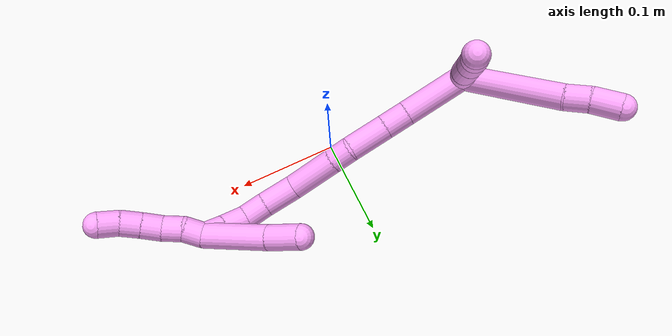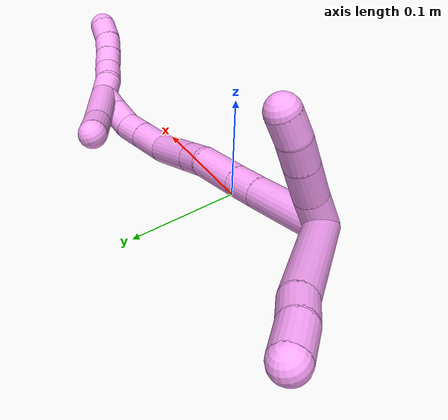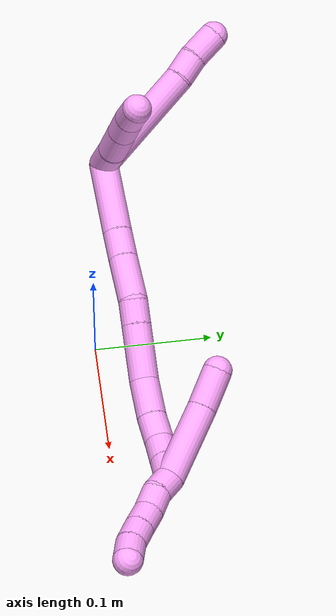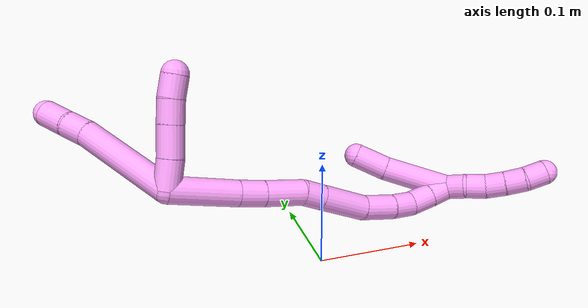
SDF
<sdf version="1.7">
 <world name="default">
  <model name="4">
   <static>0</static>
   <link name="4">
    <collision name="collision-cylinder-e_1_2_8">
     <pose>-0.034343 0.031121 0.018334 -1.03842 -0.760177 0.448963</pose>
     <geometry><cylinder><radius>0.0125</radius><length>0.099682</length></cylinder></geometry>
     <surface>
      <friction><ode><mu>1.16</mu><mu2>1.16</mu2><slip1>0</slip1><slip2>0</slip2></ode></friction>
      <contact><ode><kp>1e+06</kp><kd>1</kd><max_vel>0</max_vel><min_depth>0.001</min_depth></ode></contact>
     </surface>
    </collision>
    <visual name="visual-cylinder-e_1_2_8">
     <pose>-0.034343 0.031121 0.018334 -1.03842 -0.760177 0.448963</pose>
     <geometry><cylinder><radius>0.0125</radius><length>0.099682</length></cylinder></geometry>
     <material><ambient>1 0.65098 0.996078 1</ambient></material>
    </visual>
    <collision name="collision-cylinder-e_2_8_9">
     <pose>-0.077709 0.068438 0.039784 -1.10468 -0.915539 0.589606</pose>
     <geometry><cylinder><radius>0.0125</radius><length>0.022761</length></cylinder></geometry>
     <surface>
      <friction><ode><mu>1.16</mu><mu2>1.16</mu2><slip1>0</slip1><slip2>0</slip2></ode></friction>
      <contact><ode><kp>1e+06</kp><kd>1</kd><max_vel>0</max_vel><min_depth>0.001</min_depth></ode></contact>
     </surface>
    </collision>
    <visual name="visual-cylinder-e_2_8_9">
     <pose>-0.077709 0.068438 0.039784 -1.10468 -0.915539 0.589606</pose>
     <geometry><cylinder><radius>0.0125</radius><length>0.022761</length></cylinder></geometry>
     <material><ambient>1 0.65098 0.996078 1</ambient></material>
    </visual>
    <collision name="collision-cylinder-e_3_9_6">
     <pose>-0.096449 0.083834 0.046186 -1.22786 -0.782669 0.566002</pose>
     <geometry><cylinder><radius>0.0125</radius><length>0.027557</length></cylinder></geometry>
     <surface>
      <friction><ode><mu>1.16</mu><mu2>1.16</mu2><slip1>0</slip1><slip2>0</slip2></ode></friction>
      <contact><ode><kp>1e+06</kp><kd>1</kd><max_vel>0</max_vel><min_depth>0.001</min_depth></ode></contact>
     </surface>
    </collision>
    <visual name="visual-cylinder-e_3_9_6">
     <pose>-0.096449 0.083834 0.046186 -1.22786 -0.782669 0.566002</pose>
     <geometry><cylinder><radius>0.0125</radius><length>0.027557</length></cylinder></geometry>
     <material><ambient>1 0.65098 0.996078 1</ambient></material>
    </visual>
    <collision name="collision-cylinder-e_1_2_10">
     <pose>0.000257 3.4e-05 0.014039 -0.002412 0.018307 -2.2e-05</pose>
     <geometry><cylinder><radius>0.0125</radius><length>0.028082</length></cylinder></geometry>
     <surface>
      <friction><ode><mu>1.16</mu><mu2>1.16</mu2><slip1>0</slip1><slip2>0</slip2></ode></friction>
      <contact><ode><kp>1e+06</kp><kd>1</kd><max_vel>0</max_vel><min_depth>0.001</min_depth></ode></contact>
     </surface>
    </collision>
    <visual name="visual-cylinder-e_1_2_10">
     <pose>0.000257 3.4e-05 0.014039 -0.002412 0.018307 -2.2e-05</pose>
     <geometry><cylinder><radius>0.0125</radius><length>0.028082</length></cylinder></geometry>
     <material><ambient>1 0.65098 0.996078 1</ambient></material>
    </visual>
    <collision name="collision-cylinder-e_2_10_11">
     <pose>-0.000883 0.000282 0.042665 -0.014667 -0.095443 0.0007</pose>
     <geometry><cylinder><radius>0.0125</radius><length>0.029311</length></cylinder></geometry>
     <surface>
      <friction><ode><mu>1.16</mu><mu2>1.16</mu2><slip1>0</slip1><slip2>0</slip2></ode></friction>
      <contact><ode><kp>1e+06</kp><kd>1</kd><max_vel>0</max_vel><min_depth>0.001</min_depth></ode></contact>
     </surface>
    </collision>
    <visual name="visual-cylinder-e_2_10_11">
     <pose>-0.000883 0.000282 0.042665 -0.014667 -0.095443 0.0007</pose>
     <geometry><cylinder><radius>0.0125</radius><length>0.029311</length></cylinder></geometry>
     <material><ambient>1 0.65098 0.996078 1</ambient></material>
    </visual>
    <collision name="collision-cylinder-e_3_11_12">
     <pose>-0.003107 0.00055 0.068196 -0.004948 -0.075532 0.000187</pose>
     <geometry><cylinder><radius>0.0125</radius><length>0.021951</length></cylinder></geometry>
     <surface>
      <friction><ode><mu>1.16</mu><mu2>1.16</mu2><slip1>0</slip1><slip2>0</slip2></ode></friction>
      <contact><ode><kp>1e+06</kp><kd>1</kd><max_vel>0</max_vel><min_depth>0.001</min_depth></ode></contact>
     </surface>
    </collision>
    <visual name="visual-cylinder-e_3_11_12">
     <pose>-0.003107 0.00055 0.068196 -0.004948 -0.075532 0.000187</pose>
     <geometry><cylinder><radius>0.0125</radius><length>0.021951</length></cylinder></geometry>
     <material><ambient>1 0.65098 0.996078 1</ambient></material>
    </visual>
    <collision name="collision-cylinder-e_4_12_5">
     <pose>-0.003267 0.000798 0.089444 -0.018791 0.064816 -0.000609</pose>
     <geometry><cylinder><radius>0.0125</radius><length>0.020656</length></cylinder></geometry>
     <surface>
      <friction><ode><mu>1.16</mu><mu2>1.16</mu2><slip1>0</slip1><slip2>0</slip2></ode></friction>
      <contact><ode><kp>1e+06</kp><kd>1</kd><max_vel>0</max_vel><min_depth>0.001</min_depth></ode></contact>
     </surface>
    </collision>
    <visual name="visual-cylinder-e_4_12_5">
     <pose>-0.003267 0.000798 0.089444 -0.018791 0.064816 -0.000609</pose>
     <geometry><cylinder><radius>0.0125</radius><length>0.020656</length></cylinder></geometry>
     <material><ambient>1 0.65098 0.996078 1</ambient></material>
    </visual>
    <collision name="collision-cylinder-e_1_2_13">
     <pose>0.0323 0.003898 -6.5e-05 -1.5875 1.45068 -1.46728</pose>
     <geometry><cylinder><radius>0.0125</radius><length>0.065069</length></cylinder></geometry>
     <surface>
      <friction><ode><mu>1.16</mu><mu2>1.16</mu2><slip1>0</slip1><slip2>0</slip2></ode></friction>
      <contact><ode><kp>1e+06</kp><kd>1</kd><max_vel>0</max_vel><min_depth>0.001</min_depth></ode></contact>
     </surface>
    </collision>
    <visual name="visual-cylinder-e_1_2_13">
     <pose>0.0323 0.003898 -6.5e-05 -1.5875 1.45068 -1.46728</pose>
     <geometry><cylinder><radius>0.0125</radius><length>0.065069</length></cylinder></geometry>
     <material><ambient>1 0.65098 0.996078 1</ambient></material>
    </visual>
    <collision name="collision-cylinder-e_2_13_14">
     <pose>0.077022 0.009305 0.000277 -1.3075 1.44563 -1.18857</pose>
     <geometry><cylinder><radius>0.0125</radius><length>0.025039</length></cylinder></geometry>
     <surface>
      <friction><ode><mu>1.16</mu><mu2>1.16</mu2><slip1>0</slip1><slip2>0</slip2></ode></friction>
      <contact><ode><kp>1e+06</kp><kd>1</kd><max_vel>0</max_vel><min_depth>0.001</min_depth></ode></contact>
     </surface>
    </collision>
    <visual name="visual-cylinder-e_2_13_14">
     <pose>0.077022 0.009305 0.000277 -1.3075 1.44563 -1.18857</pose>
     <geometry><cylinder><radius>0.0125</radius><length>0.025039</length></cylinder></geometry>
     <material><ambient>1 0.65098 0.996078 1</ambient></material>
    </visual>
    <collision name="collision-cylinder-e_3_14_15">
     <pose>0.109208 0.013242 0.002181 -1.01822 1.42744 -0.900567</pose>
     <geometry><cylinder><radius>0.0125</radius><length>0.039939</length></cylinder></geometry>
     <surface>
      <friction><ode><mu>1.16</mu><mu2>1.16</mu2><slip1>0</slip1><slip2>0</slip2></ode></friction>
      <contact><ode><kp>1e+06</kp><kd>1</kd><max_vel>0</max_vel><min_depth>0.001</min_depth></ode></contact>
     </surface>
    </collision>
    <visual name="visual-cylinder-e_3_14_15">
     <pose>0.109208 0.013242 0.002181 -1.01822 1.42744 -0.900567</pose>
     <geometry><cylinder><radius>0.0125</radius><length>0.039939</length></cylinder></geometry>
     <material><ambient>1 0.65098 0.996078 1</ambient></material>
    </visual>
    <collision name="collision-cylinder-e_4_15_16">
     <pose>0.139167 0.016898 0.001775 -2.56872 1.35219 -2.43785</pose>
     <geometry><cylinder><radius>0.0125</radius><length>0.020887</length></cylinder></geometry>
     <surface>
      <friction><ode><mu>1.16</mu><mu2>1.16</mu2><slip1>0</slip1><slip2>0</slip2></ode></friction>
      <contact><ode><kp>1e+06</kp><kd>1</kd><max_vel>0</max_vel><min_depth>0.001</min_depth></ode></contact>
     </surface>
    </collision>
    <visual name="visual-cylinder-e_4_15_16">
     <pose>0.139167 0.016898 0.001775 -2.56872 1.35219 -2.43785</pose>
     <geometry><cylinder><radius>0.0125</radius><length>0.020887</length></cylinder></geometry>
     <material><ambient>1 0.65098 0.996078 1</ambient></material>
    </visual>
    <collision name="collision-cylinder-e_5_16_17">
     <pose>0.172902 0.021031 -0.004473 -2.55222 1.35232 -2.41827</pose>
     <geometry><cylinder><radius>0.0125</radius><length>0.048227</length></cylinder></geometry>
     <surface>
      <friction><ode><mu>1.16</mu><mu2>1.16</mu2><slip1>0</slip1><slip2>0</slip2></ode></friction>
      <contact><ode><kp>1e+06</kp><kd>1</kd><max_vel>0</max_vel><min_depth>0.001</min_depth></ode></contact>
     </surface>
    </collision>
    <visual name="visual-cylinder-e_5_16_17">
     <pose>0.172902 0.021031 -0.004473 -2.55222 1.35232 -2.41827</pose>
     <geometry><cylinder><radius>0.0125</radius><length>0.048227</length></cylinder></geometry>
     <material><ambient>1 0.65098 0.996078 1</ambient></material>
    </visual>
    <collision name="collision-cylinder-e_6_17_18">
     <pose>0.212966 0.025688 -0.007788 -1.03932 1.44843 -0.936972</pose>
     <geometry><cylinder><radius>0.0125</radius><length>0.033297</length></cylinder></geometry>
     <surface>
      <friction><ode><mu>1.16</mu><mu2>1.16</mu2><slip1>0</slip1><slip2>0</slip2></ode></friction>
      <contact><ode><kp>1e+06</kp><kd>1</kd><max_vel>0</max_vel><min_depth>0.001</min_depth></ode></contact>
     </surface>
    </collision>
    <visual name="visual-cylinder-e_6_17_18">
     <pose>0.212966 0.025688 -0.007788 -1.03932 1.44843 -0.936972</pose>
     <geometry><cylinder><radius>0.0125</radius><length>0.033297</length></cylinder></geometry>
     <material><ambient>1 0.65098 0.996078 1</ambient></material>
    </visual>
    <collision name="collision-cylinder-e_7_18_19">
     <pose>0.240962 0.029286 -0.004778 -0.750519 1.33909 -0.604493</pose>
     <geometry><cylinder><radius>0.0125</radius><length>0.023574</length></cylinder></geometry>
     <surface>
      <friction><ode><mu>1.16</mu><mu2>1.16</mu2><slip1>0</slip1><slip2>0</slip2></ode></friction>
      <contact><ode><kp>1e+06</kp><kd>1</kd><max_vel>0</max_vel><min_depth>0.001</min_depth></ode></contact>
     </surface>
    </collision>
    <visual name="visual-cylinder-e_7_18_19">
     <pose>0.240962 0.029286 -0.004778 -0.750519 1.33909 -0.604493</pose>
     <geometry><cylinder><radius>0.0125</radius><length>0.023574</length></cylinder></geometry>
     <material><ambient>1 0.65098 0.996078 1</ambient></material>
    </visual>
    <collision name="collision-cylinder-e_8_19_20">
     <pose>0.262975 0.031195 0.002242 -0.012497 1.12469 -0.007876</pose>
     <geometry><cylinder><radius>0.0125</radius><length>0.023368</length></cylinder></geometry>
     <surface>
      <friction><ode><mu>1.16</mu><mu2>1.16</mu2><slip1>0</slip1><slip2>0</slip2></ode></friction>
      <contact><ode><kp>1e+06</kp><kd>1</kd><max_vel>0</max_vel><min_depth>0.001</min_depth></ode></contact>
     </surface>
    </collision>
    <visual name="visual-cylinder-e_8_19_20">
     <pose>0.262975 0.031195 0.002242 -0.012497 1.12469 -0.007876</pose>
     <geometry><cylinder><radius>0.0125</radius><length>0.023368</length></cylinder></geometry>
     <material><ambient>1 0.65098 0.996078 1</ambient></material>
    </visual>
    <collision name="collision-cylinder-e_9_20_1">
     <pose>0.282466 0.030902 0.012369 0.069935 1.05299 0.040659</pose>
     <geometry><cylinder><radius>0.0125</radius><length>0.020601</length></cylinder></geometry>
     <surface>
      <friction><ode><mu>1.16</mu><mu2>1.16</mu2><slip1>0</slip1><slip2>0</slip2></ode></friction>
      <contact><ode><kp>1e+06</kp><kd>1</kd><max_vel>0</max_vel><min_depth>0.001</min_depth></ode></contact>
     </surface>
    </collision>
    <visual name="visual-cylinder-e_9_20_1">
     <pose>0.282466 0.030902 0.012369 0.069935 1.05299 0.040659</pose>
     <geometry><cylinder><radius>0.0125</radius><length>0.020601</length></cylinder></geometry>
     <material><ambient>1 0.65098 0.996078 1</ambient></material>
    </visual>
    <collision name="collision-cylinder-e_1_1_21">
     <pose>0.298493 0.023794 0.019534 1.27203 0.786299 0.59433</pose>
     <geometry><cylinder><radius>0.0125</radius><length>0.02</length></cylinder></geometry>
     <surface>
      <friction><ode><mu>1.16</mu><mu2>1.16</mu2><slip1>0</slip1><slip2>0</slip2></ode></friction>
      <contact><ode><kp>1e+06</kp><kd>1</kd><max_vel>0</max_vel><min_depth>0.001</min_depth></ode></contact>
     </surface>
    </collision>
    <visual name="visual-cylinder-e_1_1_21">
     <pose>0.298493 0.023794 0.019534 1.27203 0.786299 0.59433</pose>
     <geometry><cylinder><radius>0.0125</radius><length>0.02</length></cylinder></geometry>
     <material><ambient>1 0.65098 0.996078 1</ambient></material>
    </visual>
    <collision name="collision-cylinder-e_2_21_22">
     <pose>0.31436 0.012457 0.022928 1.29152 1.07362 0.843091</pose>
     <geometry><cylinder><radius>0.0125</radius><length>0.02</length></cylinder></geometry>
     <surface>
      <friction><ode><mu>1.16</mu><mu2>1.16</mu2><slip1>0</slip1><slip2>0</slip2></ode></friction>
      <contact><ode><kp>1e+06</kp><kd>1</kd><max_vel>0</max_vel><min_depth>0.001</min_depth></ode></contact>
     </surface>
    </collision>
    <visual name="visual-cylinder-e_2_21_22">
     <pose>0.31436 0.012457 0.022928 1.29152 1.07362 0.843091</pose>
     <geometry><cylinder><radius>0.0125</radius><length>0.02</length></cylinder></geometry>
     <material><ambient>1 0.65098 0.996078 1</ambient></material>
    </visual>
    <collision name="collision-cylinder-e_3_22_23">
     <pose>0.330984 0.002431 0.027245 1.06673 0.900194 0.555811</pose>
     <geometry><cylinder><radius>0.0125</radius><length>0.02</length></cylinder></geometry>
     <surface>
      <friction><ode><mu>1.16</mu><mu2>1.16</mu2><slip1>0</slip1><slip2>0</slip2></ode></friction>
      <contact><ode><kp>1e+06</kp><kd>1</kd><max_vel>0</max_vel><min_depth>0.001</min_depth></ode></contact>
     </surface>
    </collision>
    <visual name="visual-cylinder-e_3_22_23">
     <pose>0.330984 0.002431 0.027245 1.06673 0.900194 0.555811</pose>
     <geometry><cylinder><radius>0.0125</radius><length>0.02</length></cylinder></geometry>
     <material><ambient>1 0.65098 0.996078 1</ambient></material>
    </visual>
    <collision name="collision-cylinder-e_4_23_24">
     <pose>0.346653 -0.00805 0.033883 0.945689 0.900228 0.484643</pose>
     <geometry><cylinder><radius>0.0125</radius><length>0.02</length></cylinder></geometry>
     <surface>
      <friction><ode><mu>1.16</mu><mu2>1.16</mu2><slip1>0</slip1><slip2>0</slip2></ode></friction>
      <contact><ode><kp>1e+06</kp><kd>1</kd><max_vel>0</max_vel><min_depth>0.001</min_depth></ode></contact>
     </surface>
    </collision>
    <visual name="visual-cylinder-e_4_23_24">
     <pose>0.346653 -0.00805 0.033883 0.945689 0.900228 0.484643</pose>
     <geometry><cylinder><radius>0.0125</radius><length>0.02</length></cylinder></geometry>
     <material><ambient>1 0.65098 0.996078 1</ambient></material>
    </visual>
    <collision name="collision-cylinder-e_5_24_4">
     <pose>0.362806 -0.016199 0.042116 0.594852 0.982474 0.325068</pose>
     <geometry><cylinder><radius>0.0125</radius><length>0.02</length></cylinder></geometry>
     <surface>
      <friction><ode><mu>1.16</mu><mu2>1.16</mu2><slip1>0</slip1><slip2>0</slip2></ode></friction>
      <contact><ode><kp>1e+06</kp><kd>1</kd><max_vel>0</max_vel><min_depth>0.001</min_depth></ode></contact>
     </surface>
    </collision>
    <visual name="visual-cylinder-e_5_24_4">
     <pose>0.362806 -0.016199 0.042116 0.594852 0.982474 0.325068</pose>
     <geometry><cylinder><radius>0.0125</radius><length>0.02</length></cylinder></geometry>
     <material><ambient>1 0.65098 0.996078 1</ambient></material>
    </visual>
    <collision name="collision-cylinder-e_1_1_25">
     <pose>0.262356 0.045254 0.022965 -1.21236 -1.07526 0.783881</pose>
     <geometry><cylinder><radius>0.0125</radius><length>0.066067</length></cylinder></geometry>
     <surface>
      <friction><ode><mu>1.16</mu><mu2>1.16</mu2><slip1>0</slip1><slip2>0</slip2></ode></friction>
      <contact><ode><kp>1e+06</kp><kd>1</kd><max_vel>0</max_vel><min_depth>0.001</min_depth></ode></contact>
     </surface>
    </collision>
    <visual name="visual-cylinder-e_1_1_25">
     <pose>0.262356 0.045254 0.022965 -1.21236 -1.07526 0.783881</pose>
     <geometry><cylinder><radius>0.0125</radius><length>0.066067</length></cylinder></geometry>
     <material><ambient>1 0.65098 0.996078 1</ambient></material>
    </visual>
    <collision name="collision-cylinder-e_2_25_3">
     <pose>0.218401 0.066379 0.033463 -0.909952 -1.07137 0.565224</pose>
     <geometry><cylinder><radius>0.0125</radius><length>0.033933</length></cylinder></geometry>
     <surface>
      <friction><ode><mu>1.16</mu><mu2>1.16</mu2><slip1>0</slip1><slip2>0</slip2></ode></friction>
      <contact><ode><kp>1e+06</kp><kd>1</kd><max_vel>0</max_vel><min_depth>0.001</min_depth></ode></contact>
     </surface>
    </collision>
    <visual name="visual-cylinder-e_2_25_3">
     <pose>0.218401 0.066379 0.033463 -0.909952 -1.07137 0.565224</pose>
     <geometry><cylinder><radius>0.0125</radius><length>0.033933</length></cylinder></geometry>
     <material><ambient>1 0.65098 0.996078 1</ambient></material>
    </visual>
    <collision name="collision-sphere-3">
     <pose>0.203507 0.072793 0.03845 0 -0 0</pose>
     <geometry><sphere><radius>0.0125</radius></sphere></geometry>
     <surface>
      <friction><ode><mu>1.16</mu><mu2>1.16</mu2><slip1>0</slip1><slip2>0</slip2></ode></friction>
      <contact><ode><kp>1e+06</kp><kd>1</kd><max_vel>0</max_vel><min_depth>0.001</min_depth></ode></contact>
     </surface>
    </collision>
    <visual name="visual-sphere-3">
     <pose>0.203507 0.072793 0.03845 0 -0 0</pose>
     <geometry><sphere><radius>0.0125</radius></sphere></geometry>
     <material><ambient>1 0.65098 0.996078 1</ambient></material>
    </visual>
    <collision name="collision-sphere-25">
     <pose>0.233295 0.059964 0.028475 0 -0 0</pose>
     <geometry><sphere><radius>0.0125</radius></sphere></geometry>
     <surface>
      <friction><ode><mu>1.16</mu><mu2>1.16</mu2><slip1>0</slip1><slip2>0</slip2></ode></friction>
      <contact><ode><kp>1e+06</kp><kd>1</kd><max_vel>0</max_vel><min_depth>0.001</min_depth></ode></contact>
     </surface>
    </collision>
    <visual name="visual-sphere-25">
     <pose>0.233295 0.059964 0.028475 0 -0 0</pose>
     <geometry><sphere><radius>0.0125</radius></sphere></geometry>
     <material><ambient>1 0.65098 0.996078 1</ambient></material>
    </visual>
    <collision name="collision-sphere-4">
     <pose>0.371125 -0.019309 0.046712 0 -0 0</pose>
     <geometry><sphere><radius>0.0125</radius></sphere></geometry>
     <surface>
      <friction><ode><mu>1.16</mu><mu2>1.16</mu2><slip1>0</slip1><slip2>0</slip2></ode></friction>
      <contact><ode><kp>1e+06</kp><kd>1</kd><max_vel>0</max_vel><min_depth>0.001</min_depth></ode></contact>
     </surface>
    </collision>
    <visual name="visual-sphere-4">
     <pose>0.371125 -0.019309 0.046712 0 -0 0</pose>
     <geometry><sphere><radius>0.0125</radius></sphere></geometry>
     <material><ambient>1 0.65098 0.996078 1</ambient></material>
    </visual>
    <collision name="collision-sphere-24">
     <pose>0.354487 -0.013089 0.037519 0 -0 0</pose>
     <geometry><sphere><radius>0.0125</radius></sphere></geometry>
     <surface>
      <friction><ode><mu>1.16</mu><mu2>1.16</mu2><slip1>0</slip1><slip2>0</slip2></ode></friction>
      <contact><ode><kp>1e+06</kp><kd>1</kd><max_vel>0</max_vel><min_depth>0.001</min_depth></ode></contact>
     </surface>
    </collision>
    <visual name="visual-sphere-24">
     <pose>0.354487 -0.013089 0.037519 0 -0 0</pose>
     <geometry><sphere><radius>0.0125</radius></sphere></geometry>
     <material><ambient>1 0.65098 0.996078 1</ambient></material>
    </visual>
    <collision name="collision-sphere-23">
     <pose>0.338818 -0.003011 0.030246 0 -0 0</pose>
     <geometry><sphere><radius>0.0125</radius></sphere></geometry>
     <surface>
      <friction><ode><mu>1.16</mu><mu2>1.16</mu2><slip1>0</slip1><slip2>0</slip2></ode></friction>
      <contact><ode><kp>1e+06</kp><kd>1</kd><max_vel>0</max_vel><min_depth>0.001</min_depth></ode></contact>
     </surface>
    </collision>
    <visual name="visual-sphere-23">
     <pose>0.338818 -0.003011 0.030246 0 -0 0</pose>
     <geometry><sphere><radius>0.0125</radius></sphere></geometry>
     <material><ambient>1 0.65098 0.996078 1</ambient></material>
    </visual>
    <collision name="collision-sphere-22">
     <pose>0.323149 0.007872 0.024243 0 -0 0</pose>
     <geometry><sphere><radius>0.0125</radius></sphere></geometry>
     <surface>
      <friction><ode><mu>1.16</mu><mu2>1.16</mu2><slip1>0</slip1><slip2>0</slip2></ode></friction>
      <contact><ode><kp>1e+06</kp><kd>1</kd><max_vel>0</max_vel><min_depth>0.001</min_depth></ode></contact>
     </surface>
    </collision>
    <visual name="visual-sphere-22">
     <pose>0.323149 0.007872 0.024243 0 -0 0</pose>
     <geometry><sphere><radius>0.0125</radius></sphere></geometry>
     <material><ambient>1 0.65098 0.996078 1</ambient></material>
    </visual>
    <collision name="collision-sphere-21">
     <pose>0.305571 0.017042 0.021614 0 -0 0</pose>
     <geometry><sphere><radius>0.0125</radius></sphere></geometry>
     <surface>
      <friction><ode><mu>1.16</mu><mu2>1.16</mu2><slip1>0</slip1><slip2>0</slip2></ode></friction>
      <contact><ode><kp>1e+06</kp><kd>1</kd><max_vel>0</max_vel><min_depth>0.001</min_depth></ode></contact>
     </surface>
    </collision>
    <visual name="visual-sphere-21">
     <pose>0.305571 0.017042 0.021614 0 -0 0</pose>
     <geometry><sphere><radius>0.0125</radius></sphere></geometry>
     <material><ambient>1 0.65098 0.996078 1</ambient></material>
    </visual>
    <collision name="collision-sphere-1">
     <pose>0.291416 0.030545 0.017455 0 -0 0</pose>
     <geometry><sphere><radius>0.0125</radius></sphere></geometry>
     <surface>
      <friction><ode><mu>1.16</mu><mu2>1.16</mu2><slip1>0</slip1><slip2>0</slip2></ode></friction>
      <contact><ode><kp>1e+06</kp><kd>1</kd><max_vel>0</max_vel><min_depth>0.001</min_depth></ode></contact>
     </surface>
    </collision>
    <visual name="visual-sphere-1">
     <pose>0.291416 0.030545 0.017455 0 -0 0</pose>
     <geometry><sphere><radius>0.0125</radius></sphere></geometry>
     <material><ambient>1 0.65098 0.996078 1</ambient></material>
    </visual>
    <collision name="collision-sphere-11">
     <pose>-0.002279 0.000496 0.057252 0 -0 0</pose>
     <geometry><sphere><radius>0.0125</radius></sphere></geometry>
     <surface>
      <friction><ode><mu>1.16</mu><mu2>1.16</mu2><slip1>0</slip1><slip2>0</slip2></ode></friction>
      <contact><ode><kp>1e+06</kp><kd>1</kd><max_vel>0</max_vel><min_depth>0.001</min_depth></ode></contact>
     </surface>
    </collision>
    <visual name="visual-sphere-11">
     <pose>-0.002279 0.000496 0.057252 0 -0 0</pose>
     <geometry><sphere><radius>0.0125</radius></sphere></geometry>
     <material><ambient>1 0.65098 0.996078 1</ambient></material>
    </visual>
    <collision name="collision-sphere-10">
     <pose>0.000514 6.8e-05 0.028077 0 -0 0</pose>
     <geometry><sphere><radius>0.0125</radius></sphere></geometry>
     <surface>
      <friction><ode><mu>1.16</mu><mu2>1.16</mu2><slip1>0</slip1><slip2>0</slip2></ode></friction>
      <contact><ode><kp>1e+06</kp><kd>1</kd><max_vel>0</max_vel><min_depth>0.001</min_depth></ode></contact>
     </surface>
    </collision>
    <visual name="visual-sphere-10">
     <pose>0.000514 6.8e-05 0.028077 0 -0 0</pose>
     <geometry><sphere><radius>0.0125</radius></sphere></geometry>
     <material><ambient>1 0.65098 0.996078 1</ambient></material>
    </visual>
    <collision name="collision-sphere-6">
     <pose>-0.106165 0.093034 0.049471 0 -0 0</pose>
     <geometry><sphere><radius>0.0125</radius></sphere></geometry>
     <surface>
      <friction><ode><mu>1.16</mu><mu2>1.16</mu2><slip1>0</slip1><slip2>0</slip2></ode></friction>
      <contact><ode><kp>1e+06</kp><kd>1</kd><max_vel>0</max_vel><min_depth>0.001</min_depth></ode></contact>
     </surface>
    </collision>
    <visual name="visual-sphere-6">
     <pose>-0.106165 0.093034 0.049471 0 -0 0</pose>
     <geometry><sphere><radius>0.0125</radius></sphere></geometry>
     <material><ambient>1 0.65098 0.996078 1</ambient></material>
    </visual>
    <collision name="collision-sphere-9">
     <pose>-0.086733 0.074633 0.042901 0 -0 0</pose>
     <geometry><sphere><radius>0.0125</radius></sphere></geometry>
     <surface>
      <friction><ode><mu>1.16</mu><mu2>1.16</mu2><slip1>0</slip1><slip2>0</slip2></ode></friction>
      <contact><ode><kp>1e+06</kp><kd>1</kd><max_vel>0</max_vel><min_depth>0.001</min_depth></ode></contact>
     </surface>
    </collision>
    <visual name="visual-sphere-9">
     <pose>-0.086733 0.074633 0.042901 0 -0 0</pose>
     <geometry><sphere><radius>0.0125</radius></sphere></geometry>
     <material><ambient>1 0.65098 0.996078 1</ambient></material>
    </visual>
    <collision name="collision-sphere-2">
     <geometry><sphere><radius>0.0125</radius></sphere></geometry>
     <surface>
      <friction><ode><mu>1.16</mu><mu2>1.16</mu2><slip1>0</slip1><slip2>0</slip2></ode></friction>
      <contact><ode><kp>1e+06</kp><kd>1</kd><max_vel>0</max_vel><min_depth>0.001</min_depth></ode></contact>
     </surface>
    </collision>
    <visual name="visual-sphere-2">
     <geometry><sphere><radius>0.0125</radius></sphere></geometry>
     <material><ambient>1 0.65098 0.996078 1</ambient></material>
    </visual>
    <collision name="collision-sphere-19">
     <pose>0.252434 0.031132 -0.002799 0 -0 0</pose>
     <geometry><sphere><radius>0.0125</radius></sphere></geometry>
     <surface>
      <friction><ode><mu>1.16</mu><mu2>1.16</mu2><slip1>0</slip1><slip2>0</slip2></ode></friction>
      <contact><ode><kp>1e+06</kp><kd>1</kd><max_vel>0</max_vel><min_depth>0.001</min_depth></ode></contact>
     </surface>
    </collision>
    <visual name="visual-sphere-19">
     <pose>0.252434 0.031132 -0.002799 0 -0 0</pose>
     <geometry><sphere><radius>0.0125</radius></sphere></geometry>
     <material><ambient>1 0.65098 0.996078 1</ambient></material>
    </visual>
    <collision name="collision-sphere-8">
     <pose>-0.068686 0.062243 0.036668 0 -0 0</pose>
     <geometry><sphere><radius>0.0125</radius></sphere></geometry>
     <surface>
      <friction><ode><mu>1.16</mu><mu2>1.16</mu2><slip1>0</slip1><slip2>0</slip2></ode></friction>
      <contact><ode><kp>1e+06</kp><kd>1</kd><max_vel>0</max_vel><min_depth>0.001</min_depth></ode></contact>
     </surface>
    </collision>
    <visual name="visual-sphere-8">
     <pose>-0.068686 0.062243 0.036668 0 -0 0</pose>
     <geometry><sphere><radius>0.0125</radius></sphere></geometry>
     <material><ambient>1 0.65098 0.996078 1</ambient></material>
    </visual>
    <collision name="collision-sphere-12">
     <pose>-0.003936 0.000604 0.07914 0 -0 0</pose>
     <geometry><sphere><radius>0.0125</radius></sphere></geometry>
     <surface>
      <friction><ode><mu>1.16</mu><mu2>1.16</mu2><slip1>0</slip1><slip2>0</slip2></ode></friction>
      <contact><ode><kp>1e+06</kp><kd>1</kd><max_vel>0</max_vel><min_depth>0.001</min_depth></ode></contact>
     </surface>
    </collision>
    <visual name="visual-sphere-12">
     <pose>-0.003936 0.000604 0.07914 0 -0 0</pose>
     <geometry><sphere><radius>0.0125</radius></sphere></geometry>
     <material><ambient>1 0.65098 0.996078 1</ambient></material>
    </visual>
    <collision name="collision-sphere-5">
     <pose>-0.002598 0.000991 0.099749 0 -0 0</pose>
     <geometry><sphere><radius>0.0125</radius></sphere></geometry>
     <surface>
      <friction><ode><mu>1.16</mu><mu2>1.16</mu2><slip1>0</slip1><slip2>0</slip2></ode></friction>
      <contact><ode><kp>1e+06</kp><kd>1</kd><max_vel>0</max_vel><min_depth>0.001</min_depth></ode></contact>
     </surface>
    </collision>
    <visual name="visual-sphere-5">
     <pose>-0.002598 0.000991 0.099749 0 -0 0</pose>
     <geometry><sphere><radius>0.0125</radius></sphere></geometry>
     <material><ambient>1 0.65098 0.996078 1</ambient></material>
    </visual>
    <collision name="collision-sphere-13">
     <pose>0.0646 0.007796 -0.00013 0 -0 0</pose>
     <geometry><sphere><radius>0.0125</radius></sphere></geometry>
     <surface>
      <friction><ode><mu>1.16</mu><mu2>1.16</mu2><slip1>0</slip1><slip2>0</slip2></ode></friction>
      <contact><ode><kp>1e+06</kp><kd>1</kd><max_vel>0</max_vel><min_depth>0.001</min_depth></ode></contact>
     </surface>
    </collision>
    <visual name="visual-sphere-13">
     <pose>0.0646 0.007796 -0.00013 0 -0 0</pose>
     <geometry><sphere><radius>0.0125</radius></sphere></geometry>
     <material><ambient>1 0.65098 0.996078 1</ambient></material>
    </visual>
    <collision name="collision-sphere-14">
     <pose>0.089443 0.010814 0.000683 0 -0 0</pose>
     <geometry><sphere><radius>0.0125</radius></sphere></geometry>
     <surface>
      <friction><ode><mu>1.16</mu><mu2>1.16</mu2><slip1>0</slip1><slip2>0</slip2></ode></friction>
      <contact><ode><kp>1e+06</kp><kd>1</kd><max_vel>0</max_vel><min_depth>0.001</min_depth></ode></contact>
     </surface>
    </collision>
    <visual name="visual-sphere-14">
     <pose>0.089443 0.010814 0.000683 0 -0 0</pose>
     <geometry><sphere><radius>0.0125</radius></sphere></geometry>
     <material><ambient>1 0.65098 0.996078 1</ambient></material>
    </visual>
    <collision name="collision-sphere-15">
     <pose>0.128972 0.015671 0.003678 0 -0 0</pose>
     <geometry><sphere><radius>0.0125</radius></sphere></geometry>
     <surface>
      <friction><ode><mu>1.16</mu><mu2>1.16</mu2><slip1>0</slip1><slip2>0</slip2></ode></friction>
      <contact><ode><kp>1e+06</kp><kd>1</kd><max_vel>0</max_vel><min_depth>0.001</min_depth></ode></contact>
     </surface>
    </collision>
    <visual name="visual-sphere-15">
     <pose>0.128972 0.015671 0.003678 0 -0 0</pose>
     <geometry><sphere><radius>0.0125</radius></sphere></geometry>
     <material><ambient>1 0.65098 0.996078 1</ambient></material>
    </visual>
    <collision name="collision-sphere-16">
     <pose>0.149362 0.018126 -0.000128 0 -0 0</pose>
     <geometry><sphere><radius>0.0125</radius></sphere></geometry>
     <surface>
      <friction><ode><mu>1.16</mu><mu2>1.16</mu2><slip1>0</slip1><slip2>0</slip2></ode></friction>
      <contact><ode><kp>1e+06</kp><kd>1</kd><max_vel>0</max_vel><min_depth>0.001</min_depth></ode></contact>
     </surface>
    </collision>
    <visual name="visual-sphere-16">
     <pose>0.149362 0.018126 -0.000128 0 -0 0</pose>
     <geometry><sphere><radius>0.0125</radius></sphere></geometry>
     <material><ambient>1 0.65098 0.996078 1</ambient></material>
    </visual>
    <collision name="collision-sphere-17">
     <pose>0.196442 0.023936 -0.008818 0 -0 0</pose>
     <geometry><sphere><radius>0.0125</radius></sphere></geometry>
     <surface>
      <friction><ode><mu>1.16</mu><mu2>1.16</mu2><slip1>0</slip1><slip2>0</slip2></ode></friction>
      <contact><ode><kp>1e+06</kp><kd>1</kd><max_vel>0</max_vel><min_depth>0.001</min_depth></ode></contact>
     </surface>
    </collision>
    <visual name="visual-sphere-17">
     <pose>0.196442 0.023936 -0.008818 0 -0 0</pose>
     <geometry><sphere><radius>0.0125</radius></sphere></geometry>
     <material><ambient>1 0.65098 0.996078 1</ambient></material>
    </visual>
    <collision name="collision-sphere-18">
     <pose>0.22949 0.02744 -0.006758 0 -0 0</pose>
     <geometry><sphere><radius>0.0125</radius></sphere></geometry>
     <surface>
      <friction><ode><mu>1.16</mu><mu2>1.16</mu2><slip1>0</slip1><slip2>0</slip2></ode></friction>
      <contact><ode><kp>1e+06</kp><kd>1</kd><max_vel>0</max_vel><min_depth>0.001</min_depth></ode></contact>
     </surface>
    </collision>
    <visual name="visual-sphere-18">
     <pose>0.22949 0.02744 -0.006758 0 -0 0</pose>
     <geometry><sphere><radius>0.0125</radius></sphere></geometry>
     <material><ambient>1 0.65098 0.996078 1</ambient></material>
    </visual>
    <collision name="collision-sphere-20">
     <pose>0.273516 0.031258 0.007283 0 -0 0</pose>
     <geometry><sphere><radius>0.0125</radius></sphere></geometry>
     <surface>
      <friction><ode><mu>1.16</mu><mu2>1.16</mu2><slip1>0</slip1><slip2>0</slip2></ode></friction>
      <contact><ode><kp>1e+06</kp><kd>1</kd><max_vel>0</max_vel><min_depth>0.001</min_depth></ode></contact>
     </surface>
    </collision>
    <visual name="visual-sphere-20">
     <pose>0.273516 0.031258 0.007283 0 -0 0</pose>
     <geometry><sphere><radius>0.0125</radius></sphere></geometry>
     <material><ambient>1 0.65098 0.996078 1</ambient></material>
    </visual>
    <inertial>
     <pose>0.125571 0.023777 0.019211 0 -0 0</pose>
     <mass>0.75</mass>
     <inertia>
      <ixx>0.000133</ixx>
      <ixy>0</ixy>
      <ixz>0</ixz>
      <iyy>0.000207</iyy>
      <iyz>0</iyz>
      <izz>-2.8e-05</izz>
     </inertia>
    </inertial>
   </link>
   <pose>-0.133966 0.024375 0.084484 -0.275386 0.205685 -0.051946</pose>
  </model>
 </world>
</sdf>
